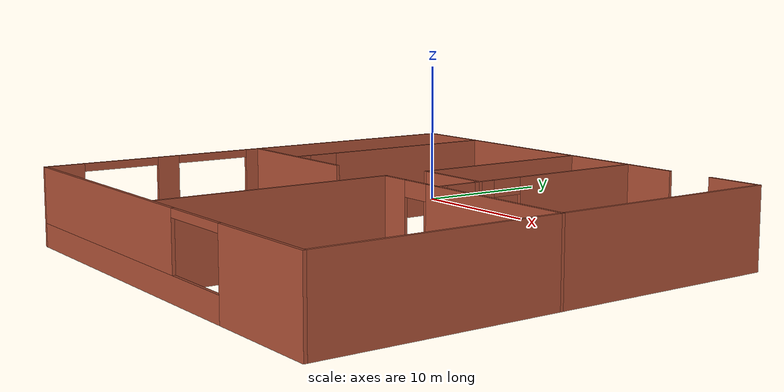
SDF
<?xml version='1.0'?>
<sdf version='1.6'>
  <model name='Appartment'>
    <pose frame=''>15 -15 0 0 -0 0</pose>
    <link name='Door_1'>
      <collision name='Door_1_Collision'>
        <geometry>
          <box>
            <size>3 0.17 4</size>
          </box>
        </geometry>
        <pose frame=''>0 0 2 0 -0 0</pose>
      </collision>
      <visual name='Door_1_Visual'>
        <pose frame=''>0 0 2 0 -0 0</pose>
        <geometry>
          <box>
            <size>3 0.17 4</size>
          </box>
        </geometry>
        <material>
          <script>
            <uri>file://media/materials/scripts/gazebo.material</uri>
            <name>Gazebo/Grey</name>
          </script>
        </material>
      </visual>
      <pose frame=''>-10 -15 0 0 -0 0</pose>
    </link>
    <link name='Wall_26'>
      <pose frame=''>-0.100001 15 0 0 -0 0</pose>
      <visual name='Wall_26_Visual_0'>
        <pose frame=''>-3.2 0 2.5 0 -0 0</pose>
        <geometry>
          <box>
            <size>23.6 0.2 5</size>
          </box>
        </geometry>
        <material>
          <script>
            <uri>file://media/materials/scripts/gazebo.material</uri>
            <name>Gazebo/Bricks</name>
          </script>
          <ambient>1 1 1 1</ambient>
        </material>
        <meta>
          <layer>0</layer>
        </meta>
      </visual>
      <collision name='Wall_26_Collision_0'>
        <geometry>
          <box>
            <size>23.6 0.2 5</size>
          </box>
        </geometry>
        <pose frame=''>-3.2 0 2.5 0 -0 0</pose>
      </collision>
      <visual name='Wall_26_Visual_1'>
        <pose frame=''>13.3 0 2.5 0 -0 0</pose>
        <geometry>
          <box>
            <size>3.4 0.2 5</size>
          </box>
        </geometry>
        <material>
          <script>
            <uri>file://media/materials/scripts/gazebo.material</uri>
            <name>Gazebo/Bricks</name>
          </script>
          <ambient>1 1 1 1</ambient>
        </material>
        <meta>
          <layer>0</layer>
        </meta>
      </visual>
      <collision name='Wall_26_Collision_1'>
        <geometry>
          <box>
            <size>3.4 0.2 5</size>
          </box>
        </geometry>
        <pose frame=''>13.3 0 2.5 0 -0 0</pose>
      </collision>
    </link>
    <link name='Wall_28'>
      <collision name='Wall_28_Collision'>
        <geometry>
          <box>
            <size>30.2 0.2 5</size>
          </box>
        </geometry>
        <pose frame=''>0 0 2.5 0 -0 0</pose>
      </collision>
      <visual name='Wall_28_Visual'>
        <pose frame=''>0 0 2.5 0 -0 0</pose>
        <geometry>
          <box>
            <size>30.2 0.2 5</size>
          </box>
        </geometry>
        <material>
          <script>
            <uri>file://media/materials/scripts/gazebo.material</uri>
            <name>Gazebo/Bricks</name>
          </script>
          <ambient>1 1 1 1</ambient>
        </material>
        <meta>
          <layer>0</layer>
        </meta>
      </visual>
      <pose frame=''>15 0 0 0 0 -1.5708</pose>
    </link>
    <link name='Wall_32'>
      <pose frame=''>0.1 -15 0 0 -0 3.14159</pose>
      <visual name='Wall_32_Visual_0'>
        <pose frame=''>-11.2 0 2.5 0 -0 0</pose>
        <geometry>
          <box>
            <size>7.6 0.2 5</size>
          </box>
        </geometry>
        <material>
          <script>
            <uri>file://media/materials/scripts/gazebo.material</uri>
            <name>Gazebo/Bricks</name>
          </script>
          <ambient>1 1 1 1</ambient>
        </material>
        <meta>
          <layer>0</layer>
        </meta>
      </visual>
      <collision name='Wall_32_Collision_0'>
        <geometry>
          <box>
            <size>7.6 0.2 5</size>
          </box>
        </geometry>
        <pose frame=''>-11.2 0 2.5 0 -0 0</pose>
      </collision>
      <visual name='Wall_32_Visual_1'>
        <pose frame=''>3.8 0 0.75 0 -0 0</pose>
        <geometry>
          <box>
            <size>22.4 0.2 1.5</size>
          </box>
        </geometry>
        <material>
          <script>
            <uri>file://media/materials/scripts/gazebo.material</uri>
            <name>Gazebo/Bricks</name>
          </script>
          <ambient>1 1 1 1</ambient>
        </material>
        <meta>
          <layer>0</layer>
        </meta>
      </visual>
      <collision name='Wall_32_Collision_1'>
        <geometry>
          <box>
            <size>22.4 0.2 1.5</size>
          </box>
        </geometry>
        <pose frame=''>3.8 0 0.75 0 -0 0</pose>
      </collision>
      <visual name='Wall_32_Visual_2'>
        <pose frame=''>6.3 0 3.25 0 -0 0</pose>
        <geometry>
          <box>
            <size>17.4 0.2 3.5</size>
          </box>
        </geometry>
        <material>
          <script>
            <uri>file://media/materials/scripts/gazebo.material</uri>
            <name>Gazebo/Bricks</name>
          </script>
          <ambient>1 1 1 1</ambient>
        </material>
        <meta>
          <layer>0</layer>
        </meta>
      </visual>
      <collision name='Wall_32_Collision_2'>
        <geometry>
          <box>
            <size>17.4 0.2 3.5</size>
          </box>
        </geometry>
        <pose frame=''>6.3 0 3.25 0 -0 0</pose>
      </collision>
      <visual name='Wall_32_Visual_3'>
        <pose frame=''>-4.9 0 4.75 0 -0 0</pose>
        <geometry>
          <box>
            <size>5 0.2 0.5</size>
          </box>
        </geometry>
        <material>
          <script>
            <uri>file://media/materials/scripts/gazebo.material</uri>
            <name>Gazebo/Bricks</name>
          </script>
          <ambient>1 1 1 1</ambient>
        </material>
        <meta>
          <layer>0</layer>
        </meta>
      </visual>
      <collision name='Wall_32_Collision_3'>
        <geometry>
          <box>
            <size>5 0.2 0.5</size>
          </box>
        </geometry>
        <pose frame=''>-4.9 0 4.75 0 -0 0</pose>
      </collision>
    </link>
    <link name='Wall_37'>
      <pose frame=''>-15 -0.1 0 0 -0 1.5708</pose>
      <visual name='Wall_37_Visual_0'>
        <pose frame=''>-13.7 0 2.5 0 -0 0</pose>
        <geometry>
          <box>
            <size>2.6 0.2 5</size>
          </box>
        </geometry>
        <material>
          <script>
            <uri>file://media/materials/scripts/gazebo.material</uri>
            <name>Gazebo/Bricks</name>
          </script>
          <ambient>1 1 1 1</ambient>
        </material>
        <meta>
          <layer>0</layer>
        </meta>
      </visual>
      <collision name='Wall_37_Collision_0'>
        <geometry>
          <box>
            <size>2.6 0.2 5</size>
          </box>
        </geometry>
        <pose frame=''>-13.7 0 2.5 0 -0 0</pose>
      </collision>
      <visual name='Wall_37_Visual_1'>
        <pose frame=''>1.3 0 0.75 0 -0 0</pose>
        <geometry>
          <box>
            <size>27.4 0.2 1.5</size>
          </box>
        </geometry>
        <material>
          <script>
            <uri>file://media/materials/scripts/gazebo.material</uri>
            <name>Gazebo/Bricks</name>
          </script>
          <ambient>1 1 1 1</ambient>
        </material>
        <meta>
          <layer>0</layer>
        </meta>
      </visual>
      <collision name='Wall_37_Collision_1'>
        <geometry>
          <box>
            <size>27.4 0.2 1.5</size>
          </box>
        </geometry>
        <pose frame=''>1.3 0 0.75 0 -0 0</pose>
      </collision>
      <visual name='Wall_37_Visual_2'>
        <pose frame=''>-6.65 0 3.25 0 -0 0</pose>
        <geometry>
          <box>
            <size>1.5 0.2 3.5</size>
          </box>
        </geometry>
        <material>
          <script>
            <uri>file://media/materials/scripts/gazebo.material</uri>
            <name>Gazebo/Bricks</name>
          </script>
          <ambient>1 1 1 1</ambient>
        </material>
        <meta>
          <layer>0</layer>
        </meta>
      </visual>
      <collision name='Wall_37_Collision_2'>
        <geometry>
          <box>
            <size>1.5 0.2 3.5</size>
          </box>
        </geometry>
        <pose frame=''>-6.65 0 3.25 0 -0 0</pose>
      </collision>
      <visual name='Wall_37_Visual_3'>
        <pose frame=''>7.05 0 3.25 0 -0 0</pose>
        <geometry>
          <box>
            <size>15.9 0.2 3.5</size>
          </box>
        </geometry>
        <material>
          <script>
            <uri>file://media/materials/scripts/gazebo.material</uri>
            <name>Gazebo/Bricks</name>
          </script>
          <ambient>1 1 1 1</ambient>
        </material>
        <meta>
          <layer>0</layer>
        </meta>
      </visual>
      <collision name='Wall_37_Collision_3'>
        <geometry>
          <box>
            <size>15.9 0.2 3.5</size>
          </box>
        </geometry>
        <pose frame=''>7.05 0 3.25 0 -0 0</pose>
      </collision>
      <visual name='Wall_37_Visual_4'>
        <pose frame=''>-9.9 0 4.75 0 -0 0</pose>
        <geometry>
          <box>
            <size>5 0.2 0.5</size>
          </box>
        </geometry>
        <material>
          <script>
            <uri>file://media/materials/scripts/gazebo.material</uri>
            <name>Gazebo/Bricks</name>
          </script>
          <ambient>1 1 1 1</ambient>
        </material>
        <meta>
          <layer>0</layer>
        </meta>
      </visual>
      <collision name='Wall_37_Collision_4'>
        <geometry>
          <box>
            <size>5 0.2 0.5</size>
          </box>
        </geometry>
        <pose frame=''>-9.9 0 4.75 0 -0 0</pose>
      </collision>
      <visual name='Wall_37_Visual_5'>
        <pose frame=''>-3.4 0 4.75 0 -0 0</pose>
        <geometry>
          <box>
            <size>5 0.2 0.5</size>
          </box>
        </geometry>
        <material>
          <script>
            <uri>file://media/materials/scripts/gazebo.material</uri>
            <name>Gazebo/Bricks</name>
          </script>
          <ambient>1 1 1 1</ambient>
        </material>
        <meta>
          <layer>0</layer>
        </meta>
      </visual>
      <collision name='Wall_37_Collision_5'>
        <geometry>
          <box>
            <size>5 0.2 0.5</size>
          </box>
        </geometry>
        <pose frame=''>-3.4 0 4.75 0 -0 0</pose>
      </collision>
    </link>
    <link name='Wall_39'>
      <collision name='Wall_39_Collision'>
        <geometry>
          <box>
            <size>0.2 0.2 5</size>
          </box>
        </geometry>
        <pose frame=''>0 0 2.5 0 -0 0</pose>
      </collision>
      <visual name='Wall_39_Visual'>
        <pose frame=''>0 0 2.5 0 -0 0</pose>
        <geometry>
          <box>
            <size>0.2 0.2 5</size>
          </box>
        </geometry>
        <material>
          <script>
            <uri>file://media/materials/scripts/gazebo.material</uri>
            <name>Gazebo/Grey</name>
          </script>
          <ambient>1 1 1 1</ambient>
        </material>
        <meta>
          <layer>0</layer>
        </meta>
      </visual>
      <pose frame=''>0 15 0 0 -0 0</pose>
    </link>
    <link name='Wall_42'>
      <collision name='Wall_42_Collision'>
        <geometry>
          <box>
            <size>12.2 0.2 5</size>
          </box>
        </geometry>
        <pose frame=''>0 0 2.5 0 -0 0</pose>
      </collision>
      <visual name='Wall_42_Visual'>
        <pose frame=''>0 0 2.5 0 -0 0</pose>
        <geometry>
          <box>
            <size>12.2 0.2 5</size>
          </box>
        </geometry>
        <material>
          <script>
            <uri>file://media/materials/scripts/gazebo.material</uri>
            <name>Gazebo/Bricks</name>
          </script>
          <ambient>1 1 1 1</ambient>
        </material>
        <meta>
          <layer>0</layer>
        </meta>
      </visual>
      <pose frame=''>0 9 0 0 0 -1.5708</pose>
    </link>
    <link name='Wall_46'>
      <collision name='Wall_46_Collision'>
        <geometry>
          <box>
            <size>10 0.2 5</size>
          </box>
        </geometry>
        <pose frame=''>0 0 2.5 0 -0 0</pose>
      </collision>
      <visual name='Wall_46_Visual'>
        <pose frame=''>0 0 2.5 0 -0 0</pose>
        <geometry>
          <box>
            <size>10 0.2 5</size>
          </box>
        </geometry>
        <material>
          <script>
            <uri>file://media/materials/scripts/gazebo.material</uri>
            <name>Gazebo/Bricks</name>
          </script>
          <ambient>1 1 1 1</ambient>
        </material>
        <meta>
          <layer>0</layer>
        </meta>
      </visual>
      <pose frame=''>-10.1 0 0 0 -0 0</pose>
    </link>
    <link name='Wall_49'>
      <pose frame=''>-10 7.6 0 0 0 -1.5708</pose>
      <visual name='Wall_49_Visual_0'>
        <pose frame=''>-1.45 0 2.5 0 -0 0</pose>
        <geometry>
          <box>
            <size>12.1 0.2 5</size>
          </box>
        </geometry>
        <material>
          <script>
            <uri>file://media/materials/scripts/gazebo.material</uri>
            <name>Gazebo/Bricks</name>
          </script>
          <ambient>1 1 1 1</ambient>
        </material>
        <meta>
          <layer>0</layer>
        </meta>
      </visual>
      <collision name='Wall_49_Collision_0'>
        <geometry>
          <box>
            <size>12.1 0.2 5</size>
          </box>
        </geometry>
        <pose frame=''>-1.45 0 2.5 0 -0 0</pose>
      </collision>
      <visual name='Wall_49_Visual_1'>
        <pose frame=''>7.05 0 2.5 0 -0 0</pose>
        <geometry>
          <box>
            <size>0.9 0.2 5</size>
          </box>
        </geometry>
        <material>
          <script>
            <uri>file://media/materials/scripts/gazebo.material</uri>
            <name>Gazebo/Bricks</name>
          </script>
          <ambient>1 1 1 1</ambient>
        </material>
        <meta>
          <layer>0</layer>
        </meta>
      </visual>
      <collision name='Wall_49_Collision_1'>
        <geometry>
          <box>
            <size>0.9 0.2 5</size>
          </box>
        </geometry>
        <pose frame=''>7.05 0 2.5 0 -0 0</pose>
      </collision>
      <visual name='Wall_49_Visual_2'>
        <pose frame=''>5.6 0 4.5 0 -0 0</pose>
        <geometry>
          <box>
            <size>2 0.2 1</size>
          </box>
        </geometry>
        <material>
          <script>
            <uri>file://media/materials/scripts/gazebo.material</uri>
            <name>Gazebo/Bricks</name>
          </script>
          <ambient>1 1 1 1</ambient>
        </material>
        <meta>
          <layer>0</layer>
        </meta>
      </visual>
      <collision name='Wall_49_Collision_2'>
        <geometry>
          <box>
            <size>2 0.2 1</size>
          </box>
        </geometry>
        <pose frame=''>5.6 0 4.5 0 -0 0</pose>
      </collision>
    </link>
    <link name='Wall_51'>
      <pose frame=''>5 7.5 0 0 0 -1.5708</pose>
      <visual name='Wall_51_Visual_0'>
        <pose frame=''>-3.05 0 2.5 0 -0 0</pose>
        <geometry>
          <box>
            <size>9.1 0.2 5</size>
          </box>
        </geometry>
        <material>
          <script>
            <uri>file://media/materials/scripts/gazebo.material</uri>
            <name>Gazebo/Bricks</name>
          </script>
          <ambient>1 1 1 1</ambient>
        </material>
        <meta>
          <layer>0</layer>
        </meta>
      </visual>
      <collision name='Wall_51_Collision_0'>
        <geometry>
          <box>
            <size>9.1 0.2 5</size>
          </box>
        </geometry>
        <pose frame=''>-3.05 0 2.5 0 -0 0</pose>
      </collision>
      <visual name='Wall_51_Visual_1'>
        <pose frame=''>4.20298 0 2.5 0 -0 0</pose>
        <geometry>
          <box>
            <size>1.40597 0.2 5</size>
          </box>
        </geometry>
        <material>
          <script>
            <uri>file://media/materials/scripts/gazebo.material</uri>
            <name>Gazebo/Bricks</name>
          </script>
          <ambient>1 1 1 1</ambient>
        </material>
        <meta>
          <layer>0</layer>
        </meta>
      </visual>
      <collision name='Wall_51_Collision_1'>
        <geometry>
          <box>
            <size>1.40597 0.2 5</size>
          </box>
        </geometry>
        <pose frame=''>4.20298 0 2.5 0 -0 0</pose>
      </collision>
      <visual name='Wall_51_Visual_2'>
        <pose frame=''>7.25298 0 2.5 0 -0 0</pose>
        <geometry>
          <box>
            <size>0.694034 0.2 5</size>
          </box>
        </geometry>
        <material>
          <script>
            <uri>file://media/materials/scripts/gazebo.material</uri>
            <name>Gazebo/Bricks</name>
          </script>
          <ambient>1 1 1 1</ambient>
        </material>
        <meta>
          <layer>0</layer>
        </meta>
      </visual>
      <collision name='Wall_51_Collision_2'>
        <geometry>
          <box>
            <size>0.694034 0.2 5</size>
          </box>
        </geometry>
        <pose frame=''>7.25298 0 2.5 0 -0 0</pose>
      </collision>
      <visual name='Wall_51_Visual_3'>
        <pose frame=''>2.5 0 4.5 0 -0 0</pose>
        <geometry>
          <box>
            <size>2 0.2 1</size>
          </box>
        </geometry>
        <material>
          <script>
            <uri>file://media/materials/scripts/gazebo.material</uri>
            <name>Gazebo/Bricks</name>
          </script>
          <ambient>1 1 1 1</ambient>
        </material>
        <meta>
          <layer>0</layer>
        </meta>
      </visual>
      <collision name='Wall_51_Collision_3'>
        <geometry>
          <box>
            <size>2 0.2 1</size>
          </box>
        </geometry>
        <pose frame=''>2.5 0 4.5 0 -0 0</pose>
      </collision>
      <visual name='Wall_51_Visual_4'>
        <pose frame=''>5.90597 0 4.5 0 -0 0</pose>
        <geometry>
          <box>
            <size>2 0.2 1</size>
          </box>
        </geometry>
        <material>
          <script>
            <uri>file://media/materials/scripts/gazebo.material</uri>
            <name>Gazebo/Bricks</name>
          </script>
          <ambient>1 1 1 1</ambient>
        </material>
        <meta>
          <layer>0</layer>
        </meta>
      </visual>
      <collision name='Wall_51_Collision_4'>
        <geometry>
          <box>
            <size>2 0.2 1</size>
          </box>
        </geometry>
        <pose frame=''>5.90597 0 4.5 0 -0 0</pose>
      </collision>
    </link>
    <link name='Wall_55'>
      <collision name='Wall_55_Collision'>
        <geometry>
          <box>
            <size>15.2 0.2 5</size>
          </box>
        </geometry>
        <pose frame=''>0 0 2.5 0 -0 0</pose>
      </collision>
      <visual name='Wall_55_Visual'>
        <pose frame=''>0 0 2.5 0 -0 0</pose>
        <geometry>
          <box>
            <size>15.2 0.2 5</size>
          </box>
        </geometry>
        <material>
          <script>
            <uri>file://media/materials/scripts/gazebo.material</uri>
            <name>Gazebo/Bricks</name>
          </script>
          <ambient>1 1 1 1</ambient>
        </material>
        <meta>
          <layer>0</layer>
        </meta>
      </visual>
      <pose frame=''>0 -7.5 0 0 -0 1.5708</pose>
    </link>
    <link name='Wall_57'>
      <pose frame=''>7.5 0 0 0 -0 0</pose>
      <visual name='Wall_57_Visual_0'>
        <pose frame=''>-6.55 0 2.5 0 -0 0</pose>
        <geometry>
          <box>
            <size>2.1 0.2 5</size>
          </box>
        </geometry>
        <material>
          <script>
            <uri>file://media/materials/scripts/gazebo.material</uri>
            <name>Gazebo/Bricks</name>
          </script>
          <ambient>1 1 1 1</ambient>
        </material>
        <meta>
          <layer>0</layer>
        </meta>
      </visual>
      <collision name='Wall_57_Collision_0'>
        <geometry>
          <box>
            <size>2.1 0.2 5</size>
          </box>
        </geometry>
        <pose frame=''>-6.55 0 2.5 0 -0 0</pose>
      </collision>
      <visual name='Wall_57_Visual_1'>
        <pose frame=''>2.05 0 2.5 0 -0 0</pose>
        <geometry>
          <box>
            <size>11.1 0.2 5</size>
          </box>
        </geometry>
        <material>
          <script>
            <uri>file://media/materials/scripts/gazebo.material</uri>
            <name>Gazebo/Bricks</name>
          </script>
          <ambient>1 1 1 1</ambient>
        </material>
        <meta>
          <layer>0</layer>
        </meta>
      </visual>
      <collision name='Wall_57_Collision_1'>
        <geometry>
          <box>
            <size>11.1 0.2 5</size>
          </box>
        </geometry>
        <pose frame=''>2.05 0 2.5 0 -0 0</pose>
      </collision>
      <visual name='Wall_57_Visual_2'>
        <pose frame=''>-4.5 0 4.5 0 -0 0</pose>
        <geometry>
          <box>
            <size>2 0.2 1</size>
          </box>
        </geometry>
        <material>
          <script>
            <uri>file://media/materials/scripts/gazebo.material</uri>
            <name>Gazebo/Bricks</name>
          </script>
          <ambient>1 1 1 1</ambient>
        </material>
        <meta>
          <layer>0</layer>
        </meta>
      </visual>
      <collision name='Wall_57_Collision_2'>
        <geometry>
          <box>
            <size>2 0.2 1</size>
          </box>
        </geometry>
        <pose frame=''>-4.5 0 4.5 0 -0 0</pose>
      </collision>
    </link>
    <link name='Wall_61'>
      <collision name='Wall_61_Collision'>
        <geometry>
          <box>
            <size>5.2 0.2 5</size>
          </box>
        </geometry>
        <pose frame=''>0 0 2.5 0 -0 0</pose>
      </collision>
      <visual name='Wall_61_Visual'>
        <pose frame=''>0 0 2.5 0 -0 0</pose>
        <geometry>
          <box>
            <size>5.2 0.2 5</size>
          </box>
        </geometry>
        <material>
          <script>
            <uri>file://media/materials/scripts/gazebo.material</uri>
            <name>Gazebo/Bricks</name>
          </script>
          <ambient>1 1 1 1</ambient>
        </material>
        <meta>
          <layer>0</layer>
        </meta>
      </visual>
      <pose frame=''>2.5 3 0 0 -0 0</pose>
    </link>
    <static>1</static>
  </model>
</sdf>
